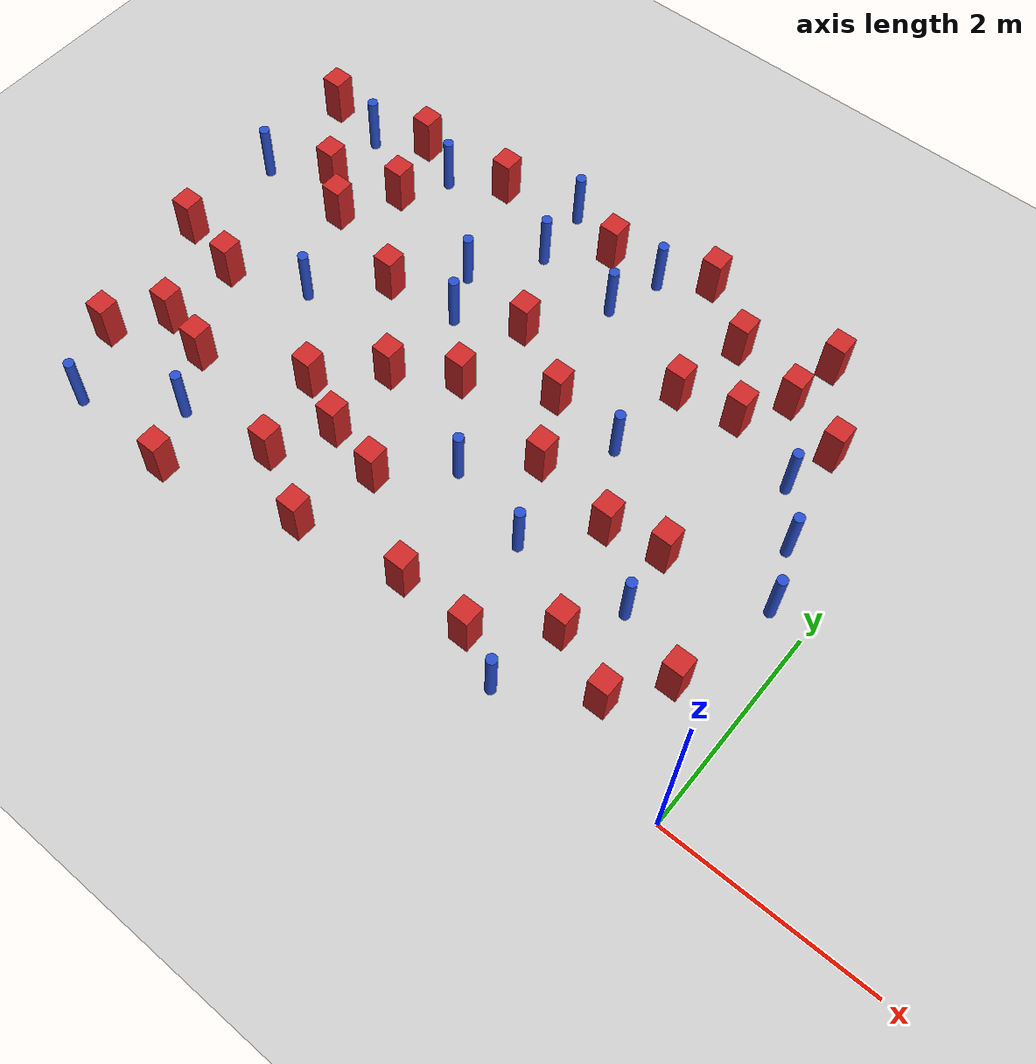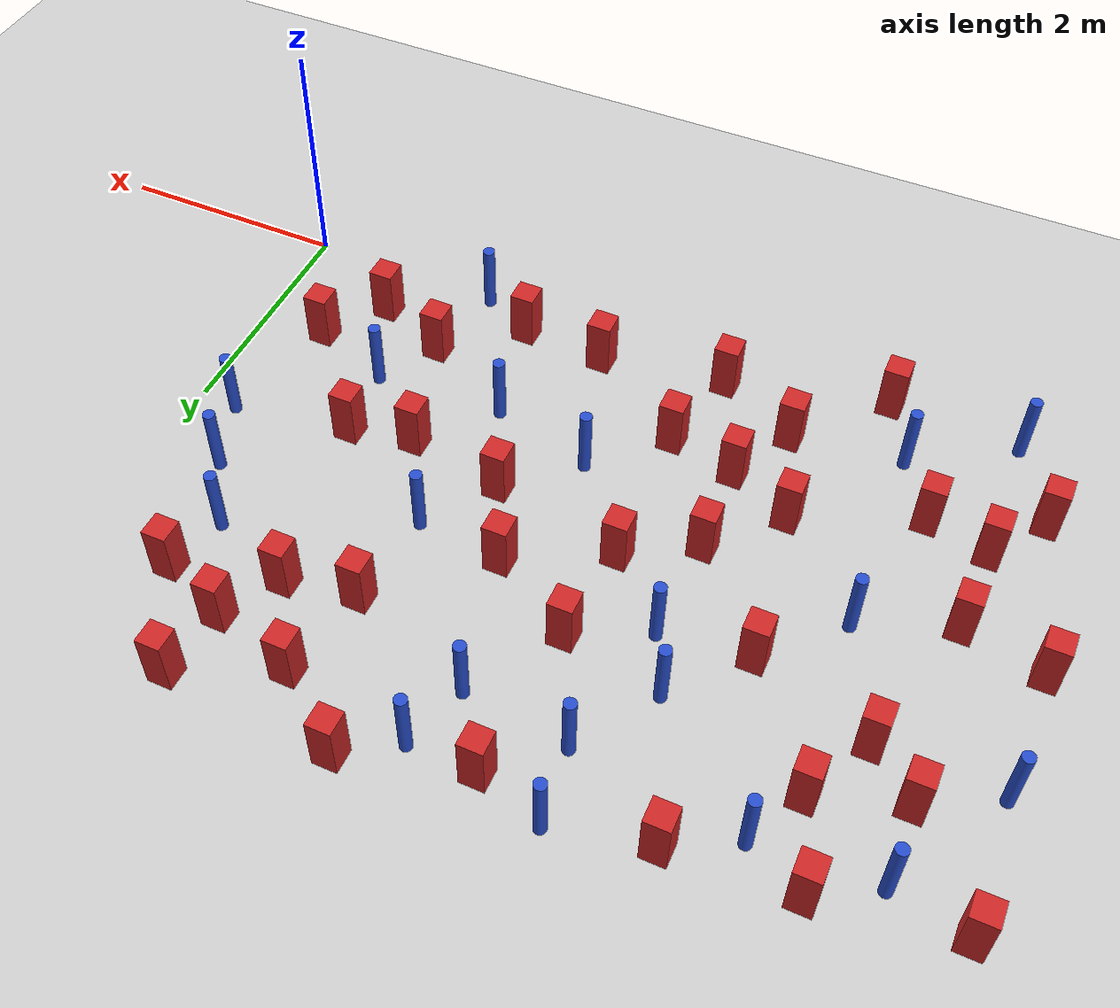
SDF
<sdf version="1.6">
 <world name="default">
  <model name="ground_plane">
   <static>1</static>
   <link name="link">
    <collision name="collision">
     <geometry><plane><normal>0 0 1</normal><size>100 100</size></plane></geometry>
     <surface><friction><ode><mu>100</mu><mu2>50</mu2></ode></friction></surface>
    </collision>
    <visual name="visual">
     <cast_shadows>0</cast_shadows>
     <geometry><plane><normal>0 0 1</normal><size>100 100</size></plane></geometry>
     <material>
      <ambient>1.0 1.0 1.0 1.0</ambient>
      <diffuse>0.8 0.8 0.8 1.0</diffuse>
      <specular>0.01 0.01 0.01 1.000000</specular>
     </material>
    </visual>
   </link>
  </model>
  <model name="pole_obstacle0">
   <static>true</static>
   <pose>-1.68350599298 0.0406684492823 2.88873142074e-08 -9.90536689842e-09 4.60219948989e-07 -1.20965994962e-07</pose>
   <link name="link">
    <pose>0 0 0.3 0 -0 0</pose>
    <inertial>
     <mass>1</mass>
     <inertia><ixx>0.145833</ixx><ixy>0</ixy><ixz>0</ixz><iyy>0.145833</iyy><iyz>0</iyz><izz>0.125</izz></inertia>
    </inertial>
    <collision name="collision">
     <geometry><cylinder><radius>0.05</radius><length>.6</length></cylinder></geometry>
    </collision>
    <visual name="visual">
     <geometry><cylinder><radius>0.05</radius><length>.6</length></cylinder></geometry>
     <material>
      <script><name>Gazebo/Blue</name><uri>file://media/materials/scripts/gazebo.material</uri></script>
     </material>
    </visual>
   </link>
  </model>
  <model name="square_post_obstacle5">
   <static>true</static>
   <pose>-3.76853762115 2.15480070877 8.22691968438e-08 7.2212513382e-06 -7.54495500217e-07 2.29674213826e-05</pose>
   <link name="link">
    <pose>0 0 0.25 0 -0 0</pose>
    <inertial>
     <mass>100</mass>
     <inertia>
      <ixx>0.166667</ixx>
      <ixy>0</ixy>
      <ixz>0</ixz>
      <iyy>0.166667</iyy>
      <iyz>0</iyz>
      <izz>0.166667</izz>
     </inertia>
    </inertial>
    <collision name="collision"><geometry><box><size>.2 .2 .5</size></box></geometry></collision>
    <visual name="visual">
     <geometry><box><size>.2 .2 .5</size></box></geometry>
     <material>
      <script><name>Gazebo/Red</name><uri>file://media/materials/scripts/gazebo.material</uri></script>
     </material>
    </visual>
   </link>
  </model>
  <model name="square_post_obstacle10">
   <static>true</static>
   <pose>-5.87943998003 4.15990492513 8.22691968438e-08 7.2212513382e-06 -7.54495500217e-07 2.29674213826e-05</pose>
   <link name="link">
    <pose>0 0 0.25 0 -0 0</pose>
    <inertial>
     <mass>100</mass>
     <inertia>
      <ixx>0.166667</ixx>
      <ixy>0</ixy>
      <ixz>0</ixz>
      <iyy>0.166667</iyy>
      <iyz>0</iyz>
      <izz>0.166667</izz>
     </inertia>
    </inertial>
    <collision name="collision"><geometry><box><size>.2 .2 .5</size></box></geometry></collision>
    <visual name="visual">
     <geometry><box><size>.2 .2 .5</size></box></geometry>
     <material>
      <script><name>Gazebo/Red</name><uri>file://media/materials/scripts/gazebo.material</uri></script>
     </material>
    </visual>
   </link>
  </model>
  <model name="pole_obstacle15">
   <static>true</static>
   <pose>-3.24099631018 3.70086770834 2.88873142074e-08 -9.90536689597e-09 4.60219948995e-07 -1.20965994957e-07</pose>
   <link name="link">
    <pose>0 0 0.3 0 -0 0</pose>
    <inertial>
     <mass>1</mass>
     <inertia><ixx>0.145833</ixx><ixy>0</ixy><ixz>0</ixz><iyy>0.145833</iyy><iyz>0</iyz><izz>0.125</izz></inertia>
    </inertial>
    <collision name="collision">
     <geometry><cylinder><radius>0.05</radius><length>.6</length></cylinder></geometry>
    </collision>
    <visual name="visual">
     <geometry><cylinder><radius>0.05</radius><length>.6</length></cylinder></geometry>
     <material>
      <script><name>Gazebo/Blue</name><uri>file://media/materials/scripts/gazebo.material</uri></script>
     </material>
    </visual>
   </link>
  </model>
  <model name="square_post_obstacle14">
   <static>true</static>
   <pose>-4.92108816444 4.22888072419 8.22691968438e-08 7.2212513382e-06 -7.54495500217e-07 2.29674213826e-05</pose>
   <link name="link">
    <pose>0 0 0.25 0 -0 0</pose>
    <inertial>
     <mass>100</mass>
     <inertia>
      <ixx>0.166667</ixx>
      <ixy>0</ixy>
      <ixz>0</ixz>
      <iyy>0.166667</iyy>
      <iyz>0</iyz>
      <izz>0.166667</izz>
     </inertia>
    </inertial>
    <collision name="collision"><geometry><box><size>.2 .2 .5</size></box></geometry></collision>
    <visual name="visual">
     <geometry><box><size>.2 .2 .5</size></box></geometry>
     <material>
      <script><name>Gazebo/Red</name><uri>file://media/materials/scripts/gazebo.material</uri></script>
     </material>
    </visual>
   </link>
  </model>
  <model name="pole_obstacle23">
   <static>true</static>
   <pose>-3.18506556679 1.43065779413 2.88873142074e-08 -9.90536689395e-09 4.60219949e-07 -1.20965994953e-07</pose>
   <link name="link">
    <pose>0 0 0.3 0 -0 0</pose>
    <inertial>
     <mass>1</mass>
     <inertia><ixx>0.145833</ixx><ixy>0</ixy><ixz>0</ixz><iyy>0.145833</iyy><iyz>0</iyz><izz>0.125</izz></inertia>
    </inertial>
    <collision name="collision">
     <geometry><cylinder><radius>0.05</radius><length>.6</length></cylinder></geometry>
    </collision>
    <visual name="visual">
     <geometry><cylinder><radius>0.05</radius><length>.6</length></cylinder></geometry>
     <material>
      <script><name>Gazebo/Blue</name><uri>file://media/materials/scripts/gazebo.material</uri></script>
     </material>
    </visual>
   </link>
  </model>
  <model name="square_post_obstacle22">
   <static>true</static>
   <pose>-0.929781425632 0.508790681802 8.22691968438e-08 7.22125133819e-06 -7.54495500217e-07 2.29674213826e-05</pose>
   <link name="link">
    <pose>0 0 0.25 0 -0 0</pose>
    <inertial>
     <mass>100</mass>
     <inertia>
      <ixx>0.166667</ixx>
      <ixy>0</ixy>
      <ixz>0</ixz>
      <iyy>0.166667</iyy>
      <iyz>0</iyz>
      <izz>0.166667</izz>
     </inertia>
    </inertial>
    <collision name="collision"><geometry><box><size>.2 .2 .5</size></box></geometry></collision>
    <visual name="visual">
     <geometry><box><size>.2 .2 .5</size></box></geometry>
     <material>
      <script><name>Gazebo/Red</name><uri>file://media/materials/scripts/gazebo.material</uri></script>
     </material>
    </visual>
   </link>
  </model>
  <model name="square_post_obstacle30">
   <static>true</static>
   <pose>-5.21175250952 -0.202573433909 8.22691968438e-08 7.2212513382e-06 -7.54495500217e-07 2.29674213826e-05</pose>
   <link name="link">
    <pose>0 0 0.25 0 -0 0</pose>
    <inertial>
     <mass>100</mass>
     <inertia>
      <ixx>0.166667</ixx>
      <ixy>0</ixy>
      <ixz>0</ixz>
      <iyy>0.166667</iyy>
      <iyz>0</iyz>
      <izz>0.166667</izz>
     </inertia>
    </inertial>
    <collision name="collision"><geometry><box><size>.2 .2 .5</size></box></geometry></collision>
    <visual name="visual">
     <geometry><box><size>.2 .2 .5</size></box></geometry>
     <material>
      <script><name>Gazebo/Red</name><uri>file://media/materials/scripts/gazebo.material</uri></script>
     </material>
    </visual>
   </link>
  </model>
  <model name="pole_obstacle49">
   <static>true</static>
   <pose>-5.48086079451 0.342376806715 2.88873142074e-08 -9.90536689981e-09 4.60219948986e-07 -1.20965994962e-07</pose>
   <link name="link">
    <pose>0 0 0.3 0 -0 0</pose>
    <inertial>
     <mass>1</mass>
     <inertia><ixx>0.145833</ixx><ixy>0</ixy><ixz>0</ixz><iyy>0.145833</iyy><iyz>0</iyz><izz>0.125</izz></inertia>
    </inertial>
    <collision name="collision">
     <geometry><cylinder><radius>0.05</radius><length>.6</length></cylinder></geometry>
    </collision>
    <visual name="visual">
     <geometry><cylinder><radius>0.05</radius><length>.6</length></cylinder></geometry>
     <material>
      <script><name>Gazebo/Blue</name><uri>file://media/materials/scripts/gazebo.material</uri></script>
     </material>
    </visual>
   </link>
  </model>
  <model name="pole_obstacle52">
   <static>true</static>
   <pose>-4.29246327346 2.68255944513 2.88873142074e-08 -9.90536690245e-09 4.6021994898e-07 -1.20965994966e-07</pose>
   <link name="link">
    <pose>0 0 0.3 0 -0 0</pose>
    <inertial>
     <mass>1</mass>
     <inertia><ixx>0.145833</ixx><ixy>0</ixy><ixz>0</ixz><iyy>0.145833</iyy><iyz>0</iyz><izz>0.125</izz></inertia>
    </inertial>
    <collision name="collision">
     <geometry><cylinder><radius>0.05</radius><length>.6</length></cylinder></geometry>
    </collision>
    <visual name="visual">
     <geometry><cylinder><radius>0.05</radius><length>.6</length></cylinder></geometry>
     <material>
      <script><name>Gazebo/Blue</name><uri>file://media/materials/scripts/gazebo.material</uri></script>
     </material>
    </visual>
   </link>
  </model>
  <model name="square_post_obstacle47">
   <static>true</static>
   <pose>-5.00473380162 2.5929735134 8.22691968438e-08 7.2212513382e-06 -7.54495500217e-07 2.29674213826e-05</pose>
   <link name="link">
    <pose>0 0 0.25 0 -0 0</pose>
    <inertial>
     <mass>100</mass>
     <inertia>
      <ixx>0.166667</ixx>
      <ixy>0</ixy>
      <ixz>0</ixz>
      <iyy>0.166667</iyy>
      <iyz>0</iyz>
      <izz>0.166667</izz>
     </inertia>
    </inertial>
    <collision name="collision"><geometry><box><size>.2 .2 .5</size></box></geometry></collision>
    <visual name="visual">
     <geometry><box><size>.2 .2 .5</size></box></geometry>
     <material>
      <script><name>Gazebo/Red</name><uri>file://media/materials/scripts/gazebo.material</uri></script>
     </material>
    </visual>
   </link>
  </model>
  <model name="square_post_obstacle48">
   <static>true</static>
   <pose>-2.85455824099 0.311410982076 8.22691968438e-08 7.2212513382e-06 -7.54495500217e-07 2.29674213826e-05</pose>
   <link name="link">
    <pose>0 0 0.25 0 -0 0</pose>
    <inertial>
     <mass>100</mass>
     <inertia>
      <ixx>0.166667</ixx>
      <ixy>0</ixy>
      <ixz>0</ixz>
      <iyy>0.166667</iyy>
      <iyz>0</iyz>
      <izz>0.166667</izz>
     </inertia>
    </inertial>
    <collision name="collision"><geometry><box><size>.2 .2 .5</size></box></geometry></collision>
    <visual name="visual">
     <geometry><box><size>.2 .2 .5</size></box></geometry>
     <material>
      <script><name>Gazebo/Red</name><uri>file://media/materials/scripts/gazebo.material</uri></script>
     </material>
    </visual>
   </link>
  </model>
  <model name="square_post_obstacle49">
   <static>true</static>
   <pose>-4.5693647138 0.486127010486 8.22691968438e-08 7.2212513382e-06 -7.54495500217e-07 2.29674213826e-05</pose>
   <link name="link">
    <pose>0 0 0.25 0 -0 0</pose>
    <inertial>
     <mass>100</mass>
     <inertia>
      <ixx>0.166667</ixx>
      <ixy>0</ixy>
      <ixz>0</ixz>
      <iyy>0.166667</iyy>
      <iyz>0</iyz>
      <izz>0.166667</izz>
     </inertia>
    </inertial>
    <collision name="collision"><geometry><box><size>.2 .2 .5</size></box></geometry></collision>
    <visual name="visual">
     <geometry><box><size>.2 .2 .5</size></box></geometry>
     <material>
      <script><name>Gazebo/Red</name><uri>file://media/materials/scripts/gazebo.material</uri></script>
     </material>
    </visual>
   </link>
  </model>
  <model name="square_post_obstacle63">
   <static>true</static>
   <pose>-0.770766514247 3.6390834917 8.22691968438e-08 7.2212513382e-06 -7.54495500217e-07 2.29674213826e-05</pose>
   <link name="link">
    <pose>0 0 0.25 0 -0 0</pose>
    <inertial>
     <mass>100</mass>
     <inertia>
      <ixx>0.166667</ixx>
      <ixy>0</ixy>
      <ixz>0</ixz>
      <iyy>0.166667</iyy>
      <iyz>0</iyz>
      <izz>0.166667</izz>
     </inertia>
    </inertial>
    <collision name="collision"><geometry><box><size>.2 .2 .5</size></box></geometry></collision>
    <visual name="visual">
     <geometry><box><size>.2 .2 .5</size></box></geometry>
     <material>
      <script><name>Gazebo/Red</name><uri>file://media/materials/scripts/gazebo.material</uri></script>
     </material>
    </visual>
   </link>
  </model>
  <model name="square_post_obstacle67">
   <static>true</static>
   <pose>-1.61725956201 3.41392226882 8.22691968438e-08 7.2212513382e-06 -7.54495500217e-07 2.29674213826e-05</pose>
   <link name="link">
    <pose>0 0 0.25 0 -0 0</pose>
    <inertial>
     <mass>100</mass>
     <inertia>
      <ixx>0.166667</ixx>
      <ixy>0</ixy>
      <ixz>0</ixz>
      <iyy>0.166667</iyy>
      <iyz>0</iyz>
      <izz>0.166667</izz>
     </inertia>
    </inertial>
    <collision name="collision"><geometry><box><size>.2 .2 .5</size></box></geometry></collision>
    <visual name="visual">
     <geometry><box><size>.2 .2 .5</size></box></geometry>
     <material>
      <script><name>Gazebo/Red</name><uri>file://media/materials/scripts/gazebo.material</uri></script>
     </material>
    </visual>
   </link>
  </model>
  <model name="square_post_obstacle68">
   <static>true</static>
   <pose>-3.72192749378 0.902665943159 8.22691968438e-08 7.2212513382e-06 -7.54495500217e-07 2.29674213826e-05</pose>
   <link name="link">
    <pose>0 0 0.25 0 -0 0</pose>
    <inertial>
     <mass>100</mass>
     <inertia>
      <ixx>0.166667</ixx>
      <ixy>0</ixy>
      <ixz>0</ixz>
      <iyy>0.166667</iyy>
      <iyz>0</iyz>
      <izz>0.166667</izz>
     </inertia>
    </inertial>
    <collision name="collision"><geometry><box><size>.2 .2 .5</size></box></geometry></collision>
    <visual name="visual">
     <geometry><box><size>.2 .2 .5</size></box></geometry>
     <material>
      <script><name>Gazebo/Red</name><uri>file://media/materials/scripts/gazebo.material</uri></script>
     </material>
    </visual>
   </link>
  </model>
  <model name="pole_obstacle84">
   <static>true</static>
   <pose>-3.07608101263 4.23574363445 2.88873142074e-08 -9.90536689859e-09 4.60219948989e-07 -1.20965994961e-07</pose>
   <link name="link">
    <pose>0 0 0.3 0 -0 0</pose>
    <inertial>
     <mass>1</mass>
     <inertia><ixx>0.145833</ixx><ixy>0</ixy><ixz>0</ixz><iyy>0.145833</iyy><iyz>0</iyz><izz>0.125</izz></inertia>
    </inertial>
    <collision name="collision">
     <geometry><cylinder><radius>0.05</radius><length>.6</length></cylinder></geometry>
    </collision>
    <visual name="visual">
     <geometry><cylinder><radius>0.05</radius><length>.6</length></cylinder></geometry>
     <material>
      <script><name>Gazebo/Blue</name><uri>file://media/materials/scripts/gazebo.material</uri></script>
     </material>
    </visual>
   </link>
  </model>
  <model name="pole_obstacle85">
   <static>true</static>
   <pose>-2.33170797127 1.19608711577 2.88873142074e-08 -9.90536689395e-09 4.60219949e-07 -1.20965994953e-07</pose>
   <link name="link">
    <pose>0 0 0.3 0 -0 0</pose>
    <inertial>
     <mass>1</mass>
     <inertia><ixx>0.145833</ixx><ixy>0</ixy><ixz>0</ixz><iyy>0.145833</iyy><iyz>0</iyz><izz>0.125</izz></inertia>
    </inertial>
    <collision name="collision">
     <geometry><cylinder><radius>0.05</radius><length>.6</length></cylinder></geometry>
    </collision>
    <visual name="visual">
     <geometry><cylinder><radius>0.05</radius><length>.6</length></cylinder></geometry>
     <material>
      <script><name>Gazebo/Blue</name><uri>file://media/materials/scripts/gazebo.material</uri></script>
     </material>
    </visual>
   </link>
  </model>
  <model name="square_post_obstacle77">
   <static>true</static>
   <pose>-6.30284977423 0.985958974347 8.22691968438e-08 7.22125133819e-06 -7.54495500217e-07 2.29674213826e-05</pose>
   <link name="link">
    <pose>0 0 0.25 0 -0 0</pose>
    <inertial>
     <mass>100</mass>
     <inertia>
      <ixx>0.166667</ixx>
      <ixy>0</ixy>
      <ixz>0</ixz>
      <iyy>0.166667</iyy>
      <iyz>0</iyz>
      <izz>0.166667</izz>
     </inertia>
    </inertial>
    <collision name="collision"><geometry><box><size>.2 .2 .5</size></box></geometry></collision>
    <visual name="visual">
     <geometry><box><size>.2 .2 .5</size></box></geometry>
     <material>
      <script><name>Gazebo/Red</name><uri>file://media/materials/scripts/gazebo.material</uri></script>
     </material>
    </visual>
   </link>
  </model>
  <model name="square_post_obstacle83">
   <static>true</static>
   <pose>-3.89928557901 0.138228810937 8.22691968438e-08 7.2212513382e-06 -7.54495500217e-07 2.29674213826e-05</pose>
   <link name="link">
    <pose>0 0 0.25 0 -0 0</pose>
    <inertial>
     <mass>100</mass>
     <inertia>
      <ixx>0.166667</ixx>
      <ixy>0</ixy>
      <ixz>0</ixz>
      <iyy>0.166667</iyy>
      <iyz>0</iyz>
      <izz>0.166667</izz>
     </inertia>
    </inertial>
    <collision name="collision"><geometry><box><size>.2 .2 .5</size></box></geometry></collision>
    <visual name="visual">
     <geometry><box><size>.2 .2 .5</size></box></geometry>
     <material>
      <script><name>Gazebo/Red</name><uri>file://media/materials/scripts/gazebo.material</uri></script>
     </material>
    </visual>
   </link>
  </model>
  <model name="square_post_obstacle87">
   <static>true</static>
   <pose>-2.66841146267 1.93115919375 8.22691968438e-08 7.2212513382e-06 -7.54495500217e-07 2.29674213826e-05</pose>
   <link name="link">
    <pose>0 0 0.25 0 -0 0</pose>
    <inertial>
     <mass>100</mass>
     <inertia>
      <ixx>0.166667</ixx>
      <ixy>0</ixy>
      <ixz>0</ixz>
      <iyy>0.166667</iyy>
      <iyz>0</iyz>
      <izz>0.166667</izz>
     </inertia>
    </inertial>
    <collision name="collision"><geometry><box><size>.2 .2 .5</size></box></geometry></collision>
    <visual name="visual">
     <geometry><box><size>.2 .2 .5</size></box></geometry>
     <material>
      <script><name>Gazebo/Red</name><uri>file://media/materials/scripts/gazebo.material</uri></script>
     </material>
    </visual>
   </link>
  </model>
  <model name="square_post_obstacle90">
   <static>true</static>
   <pose>-6.2800242134 1.7285624804 8.22691968438e-08 7.2212513382e-06 -7.54495500217e-07 2.29674213826e-05</pose>
   <link name="link">
    <pose>0 0 0.25 0 -0 0</pose>
    <inertial>
     <mass>100</mass>
     <inertia>
      <ixx>0.166667</ixx>
      <ixy>0</ixy>
      <ixz>0</ixz>
      <iyy>0.166667</iyy>
      <iyz>0</iyz>
      <izz>0.166667</izz>
     </inertia>
    </inertial>
    <collision name="collision"><geometry><box><size>.2 .2 .5</size></box></geometry></collision>
    <visual name="visual">
     <geometry><box><size>.2 .2 .5</size></box></geometry>
     <material>
      <script><name>Gazebo/Red</name><uri>file://media/materials/scripts/gazebo.material</uri></script>
     </material>
    </visual>
   </link>
  </model>
  <model name="square_post_obstacle91">
   <static>true</static>
   <pose>-2.13926805536 0.268664814115 8.22691968438e-08 7.2212513382e-06 -7.54495500217e-07 2.29674213826e-05</pose>
   <link name="link">
    <pose>0 0 0.25 0 -0 0</pose>
    <inertial>
     <mass>100</mass>
     <inertia>
      <ixx>0.166667</ixx>
      <ixy>0</ixy>
      <ixz>0</ixz>
      <iyy>0.166667</iyy>
      <iyz>0</iyz>
      <izz>0.166667</izz>
     </inertia>
    </inertial>
    <collision name="collision"><geometry><box><size>.2 .2 .5</size></box></geometry></collision>
    <visual name="visual">
     <geometry><box><size>.2 .2 .5</size></box></geometry>
     <material>
      <script><name>Gazebo/Red</name><uri>file://media/materials/scripts/gazebo.material</uri></script>
     </material>
    </visual>
   </link>
  </model>
  <model name="square_post_obstacle94">
   <static>true</static>
   <pose>-5.79391861537 0.861672148848 8.22691968438e-08 7.2212513382e-06 -7.54495500217e-07 2.29674213826e-05</pose>
   <link name="link">
    <pose>0 0 0.25 0 -0 0</pose>
    <inertial>
     <mass>100</mass>
     <inertia>
      <ixx>0.166667</ixx>
      <ixy>0</ixy>
      <ixz>0</ixz>
      <iyy>0.166667</iyy>
      <iyz>0</iyz>
      <izz>0.166667</izz>
     </inertia>
    </inertial>
    <collision name="collision"><geometry><box><size>.2 .2 .5</size></box></geometry></collision>
    <visual name="visual">
     <geometry><box><size>.2 .2 .5</size></box></geometry>
     <material>
      <script><name>Gazebo/Red</name><uri>file://media/materials/scripts/gazebo.material</uri></script>
     </material>
    </visual>
   </link>
  </model>
  <model name="pole_obstacle103">
   <static>true</static>
   <pose>-5.42569416556 3.94830111171 2.88873142074e-08 -9.90536690245e-09 4.6021994898e-07 -1.20965994966e-07</pose>
   <link name="link">
    <pose>0 0 0.3 0 -0 0</pose>
    <inertial>
     <mass>1</mass>
     <inertia><ixx>0.145833</ixx><ixy>0</ixy><ixz>0</ixz><iyy>0.145833</iyy><iyz>0</iyz><izz>0.125</izz></inertia>
    </inertial>
    <collision name="collision">
     <geometry><cylinder><radius>0.05</radius><length>.6</length></cylinder></geometry>
    </collision>
    <visual name="visual">
     <geometry><cylinder><radius>0.05</radius><length>.6</length></cylinder></geometry>
     <material>
      <script><name>Gazebo/Blue</name><uri>file://media/materials/scripts/gazebo.material</uri></script>
     </material>
    </visual>
   </link>
  </model>
  <model name="pole_obstacle106">
   <static>true</static>
   <pose>-4.09743093056 3.7971055153 2.88873142074e-08 -9.90536690245e-09 4.6021994898e-07 -1.20965994966e-07</pose>
   <link name="link">
    <pose>0 0 0.3 0 -0 0</pose>
    <inertial>
     <mass>1</mass>
     <inertia><ixx>0.145833</ixx><ixy>0</ixy><ixz>0</ixz><iyy>0.145833</iyy><iyz>0</iyz><izz>0.125</izz></inertia>
    </inertial>
    <collision name="collision">
     <geometry><cylinder><radius>0.05</radius><length>.6</length></cylinder></geometry>
    </collision>
    <visual name="visual">
     <geometry><cylinder><radius>0.05</radius><length>.6</length></cylinder></geometry>
     <material>
      <script><name>Gazebo/Blue</name><uri>file://media/materials/scripts/gazebo.material</uri></script>
     </material>
    </visual>
   </link>
  </model>
  <model name="pole_obstacle110">
   <static>true</static>
   <pose>-1.24853065219 1.26713964978 2.88873142074e-08 -9.90536689672e-09 4.60219948993e-07 -1.20965994959e-07</pose>
   <link name="link">
    <pose>0 0 0.3 0 -0 0</pose>
    <inertial>
     <mass>1</mass>
     <inertia><ixx>0.145833</ixx><ixy>0</ixy><ixz>0</ixz><iyy>0.145833</iyy><iyz>0</iyz><izz>0.125</izz></inertia>
    </inertial>
    <collision name="collision">
     <geometry><cylinder><radius>0.05</radius><length>.6</length></cylinder></geometry>
    </collision>
    <visual name="visual">
     <geometry><cylinder><radius>0.05</radius><length>.6</length></cylinder></geometry>
     <material>
      <script><name>Gazebo/Blue</name><uri>file://media/materials/scripts/gazebo.material</uri></script>
     </material>
    </visual>
   </link>
  </model>
  <model name="square_post_obstacle103">
   <static>true</static>
   <pose>-6.9244890993 3.98751820874 8.22691968438e-08 7.2212513382e-06 -7.54495500217e-07 2.29674213826e-05</pose>
   <link name="link">
    <pose>0 0 0.25 0 -0 0</pose>
    <inertial>
     <mass>100</mass>
     <inertia>
      <ixx>0.166667</ixx>
      <ixy>0</ixy>
      <ixz>0</ixz>
      <iyy>0.166667</iyy>
      <iyz>0</iyz>
      <izz>0.166667</izz>
     </inertia>
    </inertial>
    <collision name="collision"><geometry><box><size>.2 .2 .5</size></box></geometry></collision>
    <visual name="visual">
     <geometry><box><size>.2 .2 .5</size></box></geometry>
     <material>
      <script><name>Gazebo/Red</name><uri>file://media/materials/scripts/gazebo.material</uri></script>
     </material>
    </visual>
   </link>
  </model>
  <model name="square_post_obstacle108">
   <static>true</static>
   <pose>-1.32095576389 1.88596954796 8.22691968438e-08 7.2212513382e-06 -7.54495500217e-07 2.29674213826e-05</pose>
   <link name="link">
    <pose>0 0 0.25 0 -0 0</pose>
    <inertial>
     <mass>100</mass>
     <inertia>
      <ixx>0.166667</ixx>
      <ixy>0</ixy>
      <ixz>0</ixz>
      <iyy>0.166667</iyy>
      <iyz>0</iyz>
      <izz>0.166667</izz>
     </inertia>
    </inertial>
    <collision name="collision"><geometry><box><size>.2 .2 .5</size></box></geometry></collision>
    <visual name="visual">
     <geometry><box><size>.2 .2 .5</size></box></geometry>
     <material>
      <script><name>Gazebo/Red</name><uri>file://media/materials/scripts/gazebo.material</uri></script>
     </material>
    </visual>
   </link>
  </model>
  <model name="pole_obstacle119">
   <static>true</static>
   <pose>-6.3474139129 3.88171225235 2.88873142074e-08 -9.90536690245e-09 4.6021994898e-07 -1.20965994966e-07</pose>
   <link name="link">
    <pose>0 0 0.3 0 -0 0</pose>
    <inertial>
     <mass>1</mass>
     <inertia><ixx>0.145833</ixx><ixy>0</ixy><ixz>0</ixz><iyy>0.145833</iyy><iyz>0</iyz><izz>0.125</izz></inertia>
    </inertial>
    <collision name="collision">
     <geometry><cylinder><radius>0.05</radius><length>.6</length></cylinder></geometry>
    </collision>
    <visual name="visual">
     <geometry><cylinder><radius>0.05</radius><length>.6</length></cylinder></geometry>
     <material>
      <script><name>Gazebo/Blue</name><uri>file://media/materials/scripts/gazebo.material</uri></script>
     </material>
    </visual>
   </link>
  </model>
  <model name="square_post_obstacle121">
   <static>true</static>
   <pose>-4.28742058557 1.03764796439 8.22691968438e-08 7.2212513382e-06 -7.54495500217e-07 2.29674213826e-05</pose>
   <link name="link">
    <pose>0 0 0.25 0 -0 0</pose>
    <inertial>
     <mass>100</mass>
     <inertia>
      <ixx>0.166667</ixx>
      <ixy>0</ixy>
      <ixz>0</ixz>
      <iyy>0.166667</iyy>
      <iyz>0</iyz>
      <izz>0.166667</izz>
     </inertia>
    </inertial>
    <collision name="collision"><geometry><box><size>.2 .2 .5</size></box></geometry></collision>
    <visual name="visual">
     <geometry><box><size>.2 .2 .5</size></box></geometry>
     <material>
      <script><name>Gazebo/Red</name><uri>file://media/materials/scripts/gazebo.material</uri></script>
     </material>
    </visual>
   </link>
  </model>
  <model name="pole_obstacle124">
   <static>true</static>
   <pose>-6.90847225593 2.93065748607 2.88873142074e-08 -9.90536690245e-09 4.6021994898e-07 -1.20965994966e-07</pose>
   <link name="link">
    <pose>0 0 0.3 0 -0 0</pose>
    <inertial>
     <mass>1</mass>
     <inertia><ixx>0.145833</ixx><ixy>0</ixy><ixz>0</ixz><iyy>0.145833</iyy><iyz>0</iyz><izz>0.125</izz></inertia>
    </inertial>
    <collision name="collision">
     <geometry><cylinder><radius>0.05</radius><length>.6</length></cylinder></geometry>
    </collision>
    <visual name="visual">
     <geometry><cylinder><radius>0.05</radius><length>.6</length></cylinder></geometry>
     <material>
      <script><name>Gazebo/Blue</name><uri>file://media/materials/scripts/gazebo.material</uri></script>
     </material>
    </visual>
   </link>
  </model>
  <model name="square_post_obstacle122">
   <static>true</static>
   <pose>-2.19228123594 3.30294956115 8.22691968438e-08 7.2212513382e-06 -7.54495500217e-07 2.29674213826e-05</pose>
   <link name="link">
    <pose>0 0 0.25 0 -0 0</pose>
    <inertial>
     <mass>100</mass>
     <inertia>
      <ixx>0.166667</ixx>
      <ixy>0</ixy>
      <ixz>0</ixz>
      <iyy>0.166667</iyy>
      <iyz>0</iyz>
      <izz>0.166667</izz>
     </inertia>
    </inertial>
    <collision name="collision"><geometry><box><size>.2 .2 .5</size></box></geometry></collision>
    <visual name="visual">
     <geometry><box><size>.2 .2 .5</size></box></geometry>
     <material>
      <script><name>Gazebo/Red</name><uri>file://media/materials/scripts/gazebo.material</uri></script>
     </material>
    </visual>
   </link>
  </model>
  <model name="pole_obstacle131">
   <static>true</static>
   <pose>-0.89358281909 3.13876681976 2.88873142074e-08 -9.90536689636e-09 4.60219948994e-07 -1.20965994958e-07</pose>
   <link name="link">
    <pose>0 0 0.3 0 -0 0</pose>
    <inertial>
     <mass>1</mass>
     <inertia><ixx>0.145833</ixx><ixy>0</ixy><ixz>0</ixz><iyy>0.145833</iyy><iyz>0</iyz><izz>0.125</izz></inertia>
    </inertial>
    <collision name="collision">
     <geometry><cylinder><radius>0.05</radius><length>.6</length></cylinder></geometry>
    </collision>
    <visual name="visual">
     <geometry><cylinder><radius>0.05</radius><length>.6</length></cylinder></geometry>
     <material>
      <script><name>Gazebo/Blue</name><uri>file://media/materials/scripts/gazebo.material</uri></script>
     </material>
    </visual>
   </link>
  </model>
  <model name="square_post_obstacle132">
   <static>true</static>
   <pose>-3.62147232627 4.23355309561 8.22691968438e-08 7.2212513382e-06 -7.54495500217e-07 2.29674213826e-05</pose>
   <link name="link">
    <pose>0 0 0.25 0 -0 0</pose>
    <inertial>
     <mass>100</mass>
     <inertia>
      <ixx>0.166667</ixx>
      <ixy>0</ixy>
      <ixz>0</ixz>
      <iyy>0.166667</iyy>
      <iyz>0</iyz>
      <izz>0.166667</izz>
     </inertia>
    </inertial>
    <collision name="collision"><geometry><box><size>.2 .2 .5</size></box></geometry></collision>
    <visual name="visual">
     <geometry><box><size>.2 .2 .5</size></box></geometry>
     <material>
      <script><name>Gazebo/Red</name><uri>file://media/materials/scripts/gazebo.material</uri></script>
     </material>
    </visual>
   </link>
  </model>
  <model name="pole_obstacle133">
   <static>true</static>
   <pose>-4.16282925561 4.40892232397 2.88873142074e-08 -9.90536690842e-09 4.60219948965e-07 -1.20965994976e-07</pose>
   <link name="link">
    <pose>0 0 0.3 0 -0 0</pose>
    <inertial>
     <mass>1</mass>
     <inertia><ixx>0.145833</ixx><ixy>0</ixy><ixz>0</ixz><iyy>0.145833</iyy><iyz>0</iyz><izz>0.125</izz></inertia>
    </inertial>
    <collision name="collision">
     <geometry><cylinder><radius>0.05</radius><length>.6</length></cylinder></geometry>
    </collision>
    <visual name="visual">
     <geometry><cylinder><radius>0.05</radius><length>.6</length></cylinder></geometry>
     <material>
      <script><name>Gazebo/Blue</name><uri>file://media/materials/scripts/gazebo.material</uri></script>
     </material>
    </visual>
   </link>
  </model>
  <model name="square_post_obstacle137">
   <static>true</static>
   <pose>-1.85077550267 1.78114998022 8.22691968438e-08 7.2212513382e-06 -7.54495500217e-07 2.29674213826e-05</pose>
   <link name="link">
    <pose>0 0 0.25 0 -0 0</pose>
    <inertial>
     <mass>100</mass>
     <inertia>
      <ixx>0.166667</ixx>
      <ixy>0</ixy>
      <ixz>0</ixz>
      <iyy>0.166667</iyy>
      <iyz>0</iyz>
      <izz>0.166667</izz>
     </inertia>
    </inertial>
    <collision name="collision"><geometry><box><size>.2 .2 .5</size></box></geometry></collision>
    <visual name="visual">
     <geometry><box><size>.2 .2 .5</size></box></geometry>
     <material>
      <script><name>Gazebo/Red</name><uri>file://media/materials/scripts/gazebo.material</uri></script>
     </material>
    </visual>
   </link>
  </model>
  <model name="square_post_obstacle142">
   <static>true</static>
   <pose>-3.69805102733 2.98017829536 8.22691968438e-08 7.2212513382e-06 -7.54495500217e-07 2.29674213826e-05</pose>
   <link name="link">
    <pose>0 0 0.25 0 -0 0</pose>
    <inertial>
     <mass>100</mass>
     <inertia>
      <ixx>0.166667</ixx>
      <ixy>0</ixy>
      <ixz>0</ixz>
      <iyy>0.166667</iyy>
      <iyz>0</iyz>
      <izz>0.166667</izz>
     </inertia>
    </inertial>
    <collision name="collision"><geometry><box><size>.2 .2 .5</size></box></geometry></collision>
    <visual name="visual">
     <geometry><box><size>.2 .2 .5</size></box></geometry>
     <material>
      <script><name>Gazebo/Red</name><uri>file://media/materials/scripts/gazebo.material</uri></script>
     </material>
    </visual>
   </link>
  </model>
  <model name="square_post_obstacle144">
   <static>true</static>
   <pose>-1.54646570157 0.771020596182 8.22691968438e-08 7.2212513382e-06 -7.54495500217e-07 2.29674213826e-05</pose>
   <link name="link">
    <pose>0 0 0.25 0 -0 0</pose>
    <inertial>
     <mass>100</mass>
     <inertia>
      <ixx>0.166667</ixx>
      <ixy>0</ixy>
      <ixz>0</ixz>
      <iyy>0.166667</iyy>
      <iyz>0</iyz>
      <izz>0.166667</izz>
     </inertia>
    </inertial>
    <collision name="collision"><geometry><box><size>.2 .2 .5</size></box></geometry></collision>
    <visual name="visual">
     <geometry><box><size>.2 .2 .5</size></box></geometry>
     <material>
      <script><name>Gazebo/Red</name><uri>file://media/materials/scripts/gazebo.material</uri></script>
     </material>
    </visual>
   </link>
  </model>
  <model name="pole_obstacle151">
   <static>true</static>
   <pose>-6.28591287507 -0.165123438246 2.88873142074e-08 -9.90536689223e-09 4.60219949004e-07 -1.20965994952e-07</pose>
   <link name="link">
    <pose>0 0 0.3 0 -0 0</pose>
    <inertial>
     <mass>1</mass>
     <inertia><ixx>0.145833</ixx><ixy>0</ixy><ixz>0</ixz><iyy>0.145833</iyy><iyz>0</iyz><izz>0.125</izz></inertia>
    </inertial>
    <collision name="collision">
     <geometry><cylinder><radius>0.05</radius><length>.6</length></cylinder></geometry>
    </collision>
    <visual name="visual">
     <geometry><cylinder><radius>0.05</radius><length>.6</length></cylinder></geometry>
     <material>
      <script><name>Gazebo/Blue</name><uri>file://media/materials/scripts/gazebo.material</uri></script>
     </material>
    </visual>
   </link>
  </model>
  <model name="square_post_obstacle145">
   <static>true</static>
   <pose>-5.66413011678 3.48615934559 8.22691968438e-08 7.2212513382e-06 -7.54495500217e-07 2.29674213826e-05</pose>
   <link name="link">
    <pose>0 0 0.25 0 -0 0</pose>
    <inertial>
     <mass>100</mass>
     <inertia>
      <ixx>0.166667</ixx>
      <ixy>0</ixy>
      <ixz>0</ixz>
      <iyy>0.166667</iyy>
      <iyz>0</iyz>
      <izz>0.166667</izz>
     </inertia>
    </inertial>
    <collision name="collision"><geometry><box><size>.2 .2 .5</size></box></geometry></collision>
    <visual name="visual">
     <geometry><box><size>.2 .2 .5</size></box></geometry>
     <material>
      <script><name>Gazebo/Red</name><uri>file://media/materials/scripts/gazebo.material</uri></script>
     </material>
    </visual>
   </link>
  </model>
  <model name="square_post_obstacle147">
   <static>true</static>
   <pose>-4.32639793523 1.81516945108 8.22691968438e-08 7.2212513382e-06 -7.54495500217e-07 2.29674213826e-05</pose>
   <link name="link">
    <pose>0 0 0.25 0 -0 0</pose>
    <inertial>
     <mass>100</mass>
     <inertia>
      <ixx>0.166667</ixx>
      <ixy>0</ixy>
      <ixz>0</ixz>
      <iyy>0.166667</iyy>
      <iyz>0</iyz>
      <izz>0.166667</izz>
     </inertia>
    </inertial>
    <collision name="collision"><geometry><box><size>.2 .2 .5</size></box></geometry></collision>
    <visual name="visual">
     <geometry><box><size>.2 .2 .5</size></box></geometry>
     <material>
      <script><name>Gazebo/Red</name><uri>file://media/materials/scripts/gazebo.material</uri></script>
     </material>
    </visual>
   </link>
  </model>
  <model name="square_post_obstacle148">
   <static>true</static>
   <pose>-2.98993126829 2.56654136336 8.22691968438e-08 7.2212513382e-06 -7.54495500217e-07 2.29674213826e-05</pose>
   <link name="link">
    <pose>0 0 0.25 0 -0 0</pose>
    <inertial>
     <mass>100</mass>
     <inertia>
      <ixx>0.166667</ixx>
      <ixy>0</ixy>
      <ixz>0</ixz>
      <iyy>0.166667</iyy>
      <iyz>0</iyz>
      <izz>0.166667</izz>
     </inertia>
    </inertial>
    <collision name="collision"><geometry><box><size>.2 .2 .5</size></box></geometry></collision>
    <visual name="visual">
     <geometry><box><size>.2 .2 .5</size></box></geometry>
     <material>
      <script><name>Gazebo/Red</name><uri>file://media/materials/scripts/gazebo.material</uri></script>
     </material>
    </visual>
   </link>
  </model>
  <model name="square_post_obstacle150">
   <static>true</static>
   <pose>-6.33953471919 3.24996013592 8.22691968438e-08 7.2212513382e-06 -7.54495500217e-07 2.29674213826e-05</pose>
   <link name="link">
    <pose>0 0 0.25 0 -0 0</pose>
    <inertial>
     <mass>100</mass>
     <inertia>
      <ixx>0.166667</ixx>
      <ixy>0</ixy>
      <ixz>0</ixz>
      <iyy>0.166667</iyy>
      <iyz>0</iyz>
      <izz>0.166667</izz>
     </inertia>
    </inertial>
    <collision name="collision"><geometry><box><size>.2 .2 .5</size></box></geometry></collision>
    <visual name="visual">
     <geometry><box><size>.2 .2 .5</size></box></geometry>
     <material>
      <script><name>Gazebo/Red</name><uri>file://media/materials/scripts/gazebo.material</uri></script>
     </material>
    </visual>
   </link>
  </model>
  <model name="pole_obstacle153">
   <static>true</static>
   <pose>-0.337808282046 2.05604630073 2.88873142074e-08 -9.90536689663e-09 4.60219948993e-07 -1.20965994959e-07</pose>
   <link name="link">
    <pose>0 0 0.3 0 -0 0</pose>
    <inertial>
     <mass>1</mass>
     <inertia><ixx>0.145833</ixx><ixy>0</ixy><ixz>0</ixz><iyy>0.145833</iyy><iyz>0</iyz><izz>0.125</izz></inertia>
    </inertial>
    <collision name="collision">
     <geometry><cylinder><radius>0.05</radius><length>.6</length></cylinder></geometry>
    </collision>
    <visual name="visual">
     <geometry><cylinder><radius>0.05</radius><length>.6</length></cylinder></geometry>
     <material>
      <script><name>Gazebo/Blue</name><uri>file://media/materials/scripts/gazebo.material</uri></script>
     </material>
    </visual>
   </link>
  </model>
  <model name="square_post_obstacle151">
   <static>true</static>
   <pose>-4.81196347053 1.28778669721 8.22691968438e-08 7.2212513382e-06 -7.54495500217e-07 2.29674213826e-05</pose>
   <link name="link">
    <pose>0 0 0.25 0 -0 0</pose>
    <inertial>
     <mass>100</mass>
     <inertia>
      <ixx>0.166667</ixx>
      <ixy>0</ixy>
      <ixz>0</ixz>
      <iyy>0.166667</iyy>
      <iyz>0</iyz>
      <izz>0.166667</izz>
     </inertia>
    </inertial>
    <collision name="collision"><geometry><box><size>.2 .2 .5</size></box></geometry></collision>
    <visual name="visual">
     <geometry><box><size>.2 .2 .5</size></box></geometry>
     <material>
      <script><name>Gazebo/Red</name><uri>file://media/materials/scripts/gazebo.material</uri></script>
     </material>
    </visual>
   </link>
  </model>
  <model name="pole_obstacle162">
   <static>true</static>
   <pose>-2.27202977812 2.49210467095 2.88873142074e-08 -9.90536690232e-09 4.6021994898e-07 -1.20965994968e-07</pose>
   <link name="link">
    <pose>0 0 0.3 0 -0 0</pose>
    <inertial>
     <mass>1</mass>
     <inertia><ixx>0.145833</ixx><ixy>0</ixy><ixz>0</ixz><iyy>0.145833</iyy><iyz>0</iyz><izz>0.125</izz></inertia>
    </inertial>
    <collision name="collision">
     <geometry><cylinder><radius>0.05</radius><length>.6</length></cylinder></geometry>
    </collision>
    <visual name="visual">
     <geometry><cylinder><radius>0.05</radius><length>.6</length></cylinder></geometry>
     <material>
      <script><name>Gazebo/Blue</name><uri>file://media/materials/scripts/gazebo.material</uri></script>
     </material>
    </visual>
   </link>
  </model>
  <model name="square_post_obstacle162">
   <static>true</static>
   <pose>-0.577349864732 1.00608038708 8.22691968438e-08 7.2212513382e-06 -7.54495500217e-07 2.29674213826e-05</pose>
   <link name="link">
    <pose>0 0 0.25 0 -0 0</pose>
    <inertial>
     <mass>100</mass>
     <inertia>
      <ixx>0.166667</ixx>
      <ixy>0</ixy>
      <ixz>0</ixz>
      <iyy>0.166667</iyy>
      <iyz>0</iyz>
      <izz>0.166667</izz>
     </inertia>
    </inertial>
    <collision name="collision"><geometry><box><size>.2 .2 .5</size></box></geometry></collision>
    <visual name="visual">
     <geometry><box><size>.2 .2 .5</size></box></geometry>
     <material>
      <script><name>Gazebo/Red</name><uri>file://media/materials/scripts/gazebo.material</uri></script>
     </material>
    </visual>
   </link>
  </model>
  <model name="square_post_obstacle170">
   <static>true</static>
   <pose>-1.26793224824 4.43992943512 8.22691968438e-08 7.2212513382e-06 -7.54495500217e-07 2.29674213826e-05</pose>
   <link name="link">
    <pose>0 0 0.25 0 -0 0</pose>
    <inertial>
     <mass>100</mass>
     <inertia>
      <ixx>0.166667</ixx>
      <ixy>0</ixy>
      <ixz>0</ixz>
      <iyy>0.166667</iyy>
      <iyz>0</iyz>
      <izz>0.166667</izz>
     </inertia>
    </inertial>
    <collision name="collision"><geometry><box><size>.2 .2 .5</size></box></geometry></collision>
    <visual name="visual">
     <geometry><box><size>.2 .2 .5</size></box></geometry>
     <material>
      <script><name>Gazebo/Red</name><uri>file://media/materials/scripts/gazebo.material</uri></script>
     </material>
    </visual>
   </link>
  </model>
  <model name="square_post_obstacle179">
   <static>true</static>
   <pose>-2.65331211756 4.52052652183 8.22691968438e-08 7.2212513382e-06 -7.54495500217e-07 2.29674213826e-05</pose>
   <link name="link">
    <pose>0 0 0.25 0 -0 0</pose>
    <inertial>
     <mass>100</mass>
     <inertia>
      <ixx>0.166667</ixx>
      <ixy>0</ixy>
      <ixz>0</ixz>
      <iyy>0.166667</iyy>
      <iyz>0</iyz>
      <izz>0.166667</izz>
     </inertia>
    </inertial>
    <collision name="collision"><geometry><box><size>.2 .2 .5</size></box></geometry></collision>
    <visual name="visual">
     <geometry><box><size>.2 .2 .5</size></box></geometry>
     <material>
      <script><name>Gazebo/Red</name><uri>file://media/materials/scripts/gazebo.material</uri></script>
     </material>
    </visual>
   </link>
  </model>
  <model name="square_post_obstacle191">
   <static>true</static>
   <pose>-5.95673138092 2.92550826302 8.22691968438e-08 7.2212513382e-06 -7.54495500217e-07 2.29674213826e-05</pose>
   <link name="link">
    <pose>0 0 0.25 0 -0 0</pose>
    <inertial>
     <mass>100</mass>
     <inertia>
      <ixx>0.166667</ixx>
      <ixy>0</ixy>
      <ixz>0</ixz>
      <iyy>0.166667</iyy>
      <iyz>0</iyz>
      <izz>0.166667</izz>
     </inertia>
    </inertial>
    <collision name="collision"><geometry><box><size>.2 .2 .5</size></box></geometry></collision>
    <visual name="visual">
     <geometry><box><size>.2 .2 .5</size></box></geometry>
     <material>
      <script><name>Gazebo/Red</name><uri>file://media/materials/scripts/gazebo.material</uri></script>
     </material>
    </visual>
   </link>
  </model>
  <model name="square_post_obstacle200">
   <static>true</static>
   <pose>-2.04798888269 4.07181192838 8.22691968438e-08 7.2212513382e-06 -7.54495500217e-07 2.29674213826e-05</pose>
   <link name="link">
    <pose>0 0 0.25 0 -0 0</pose>
    <inertial>
     <mass>100</mass>
     <inertia>
      <ixx>0.166667</ixx>
      <ixy>0</ixy>
      <ixz>0</ixz>
      <iyy>0.166667</iyy>
      <iyz>0</iyz>
      <izz>0.166667</izz>
     </inertia>
    </inertial>
    <collision name="collision"><geometry><box><size>.2 .2 .5</size></box></geometry></collision>
    <visual name="visual">
     <geometry><box><size>.2 .2 .5</size></box></geometry>
     <material>
      <script><name>Gazebo/Red</name><uri>file://media/materials/scripts/gazebo.material</uri></script>
     </material>
    </visual>
   </link>
  </model>
  <model name="square_post_obstacle205">
   <static>true</static>
   <pose>-6.92671732913 1.88005185251 8.22691968438e-08 7.2212513382e-06 -7.54495500217e-07 2.29674213826e-05</pose>
   <link name="link">
    <pose>0 0 0.25 0 -0 0</pose>
    <inertial>
     <mass>100</mass>
     <inertia>
      <ixx>0.166667</ixx>
      <ixy>0</ixy>
      <ixz>0</ixz>
      <iyy>0.166667</iyy>
      <iyz>0</iyz>
      <izz>0.166667</izz>
     </inertia>
    </inertial>
    <collision name="collision"><geometry><box><size>.2 .2 .5</size></box></geometry></collision>
    <visual name="visual">
     <geometry><box><size>.2 .2 .5</size></box></geometry>
     <material>
      <script><name>Gazebo/Red</name><uri>file://media/materials/scripts/gazebo.material</uri></script>
     </material>
    </visual>
   </link>
  </model>
  <model name="square_post_obstacle206">
   <static>true</static>
   <pose>-1.34886241329 3.87550696932 8.22691968438e-08 7.2212513382e-06 -7.54495500217e-07 2.29674213826e-05</pose>
   <link name="link">
    <pose>0 0 0.25 0 -0 0</pose>
    <inertial>
     <mass>100</mass>
     <inertia>
      <ixx>0.166667</ixx>
      <ixy>0</ixy>
      <ixz>0</ixz>
      <iyy>0.166667</iyy>
      <iyz>0</iyz>
      <izz>0.166667</izz>
     </inertia>
    </inertial>
    <collision name="collision"><geometry><box><size>.2 .2 .5</size></box></geometry></collision>
    <visual name="visual">
     <geometry><box><size>.2 .2 .5</size></box></geometry>
     <material>
      <script><name>Gazebo/Red</name><uri>file://media/materials/scripts/gazebo.material</uri></script>
     </material>
    </visual>
   </link>
  </model>
  <model name="square_post_obstacle208">
   <static>true</static>
   <pose>-6.63813443414 0.512733732158 8.22691968438e-08 7.2212513382e-06 -7.54495500217e-07 2.29674213826e-05</pose>
   <link name="link">
    <pose>0 0 0.25 0 -0 0</pose>
    <inertial>
     <mass>100</mass>
     <inertia>
      <ixx>0.166667</ixx>
      <ixy>0</ixy>
      <ixz>0</ixz>
      <iyy>0.166667</iyy>
      <iyz>0</iyz>
      <izz>0.166667</izz>
     </inertia>
    </inertial>
    <collision name="collision"><geometry><box><size>.2 .2 .5</size></box></geometry></collision>
    <visual name="visual">
     <geometry><box><size>.2 .2 .5</size></box></geometry>
     <material>
      <script><name>Gazebo/Red</name><uri>file://media/materials/scripts/gazebo.material</uri></script>
     </material>
    </visual>
   </link>
  </model>
  <model name="pole_obstacle199">
   <static>true</static>
   <pose>-5.54472404888 2.02257572589 2.88873142074e-08 -9.90536689683e-09 4.60219948993e-07 -1.20965994957e-07</pose>
   <link name="link">
    <pose>0 0 0.3 0 -0 0</pose>
    <inertial>
     <mass>1</mass>
     <inertia><ixx>0.145833</ixx><ixy>0</ixy><ixz>0</ixz><iyy>0.145833</iyy><iyz>0</iyz><izz>0.125</izz></inertia>
    </inertial>
    <collision name="collision">
     <geometry><cylinder><radius>0.05</radius><length>.6</length></cylinder></geometry>
    </collision>
    <visual name="visual">
     <geometry><cylinder><radius>0.05</radius><length>.6</length></cylinder></geometry>
     <material>
      <script><name>Gazebo/Blue</name><uri>file://media/materials/scripts/gazebo.material</uri></script>
     </material>
    </visual>
   </link>
  </model>
  <model name="pole_obstacle200">
   <static>true</static>
   <pose>-4.51328824641 3.14934785559 2.88873142074e-08 -9.90536690245e-09 4.6021994898e-07 -1.20965994966e-07</pose>
   <link name="link">
    <pose>0 0 0.3 0 -0 0</pose>
    <inertial>
     <mass>1</mass>
     <inertia><ixx>0.145833</ixx><ixy>0</ixy><ixz>0</ixz><iyy>0.145833</iyy><iyz>0</iyz><izz>0.125</izz></inertia>
    </inertial>
    <collision name="collision">
     <geometry><cylinder><radius>0.05</radius><length>.6</length></cylinder></geometry>
    </collision>
    <visual name="visual">
     <geometry><cylinder><radius>0.05</radius><length>.6</length></cylinder></geometry>
     <material>
      <script><name>Gazebo/Blue</name><uri>file://media/materials/scripts/gazebo.material</uri></script>
     </material>
    </visual>
   </link>
  </model>
  <model name="pole_obstacle236">
   <static>true</static>
   <pose>-0.548892990867 2.62301002041 2.88873142074e-08 -9.90536689625e-09 4.60219948994e-07 -1.20965994958e-07</pose>
   <link name="link">
    <pose>0 0 0.3 0 -0 0</pose>
    <inertial>
     <mass>1</mass>
     <inertia><ixx>0.145833</ixx><ixy>0</ixy><ixz>0</ixz><iyy>0.145833</iyy><iyz>0</iyz><izz>0.125</izz></inertia>
    </inertial>
    <collision name="collision">
     <geometry><cylinder><radius>0.05</radius><length>.6</length></cylinder></geometry>
    </collision>
    <visual name="visual">
     <geometry><cylinder><radius>0.05</radius><length>.6</length></cylinder></geometry>
     <material>
      <script><name>Gazebo/Blue</name><uri>file://media/materials/scripts/gazebo.material</uri></script>
     </material>
    </visual>
   </link>
  </model>
 </world>
</sdf>
